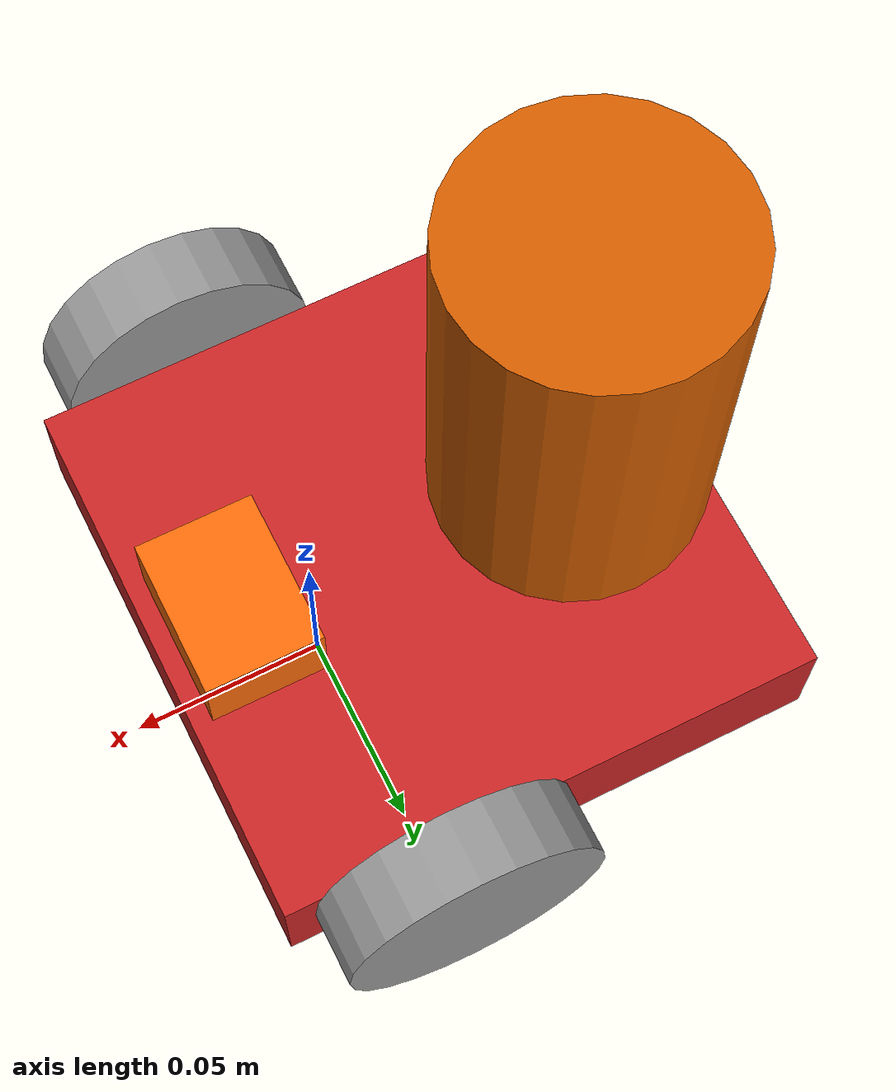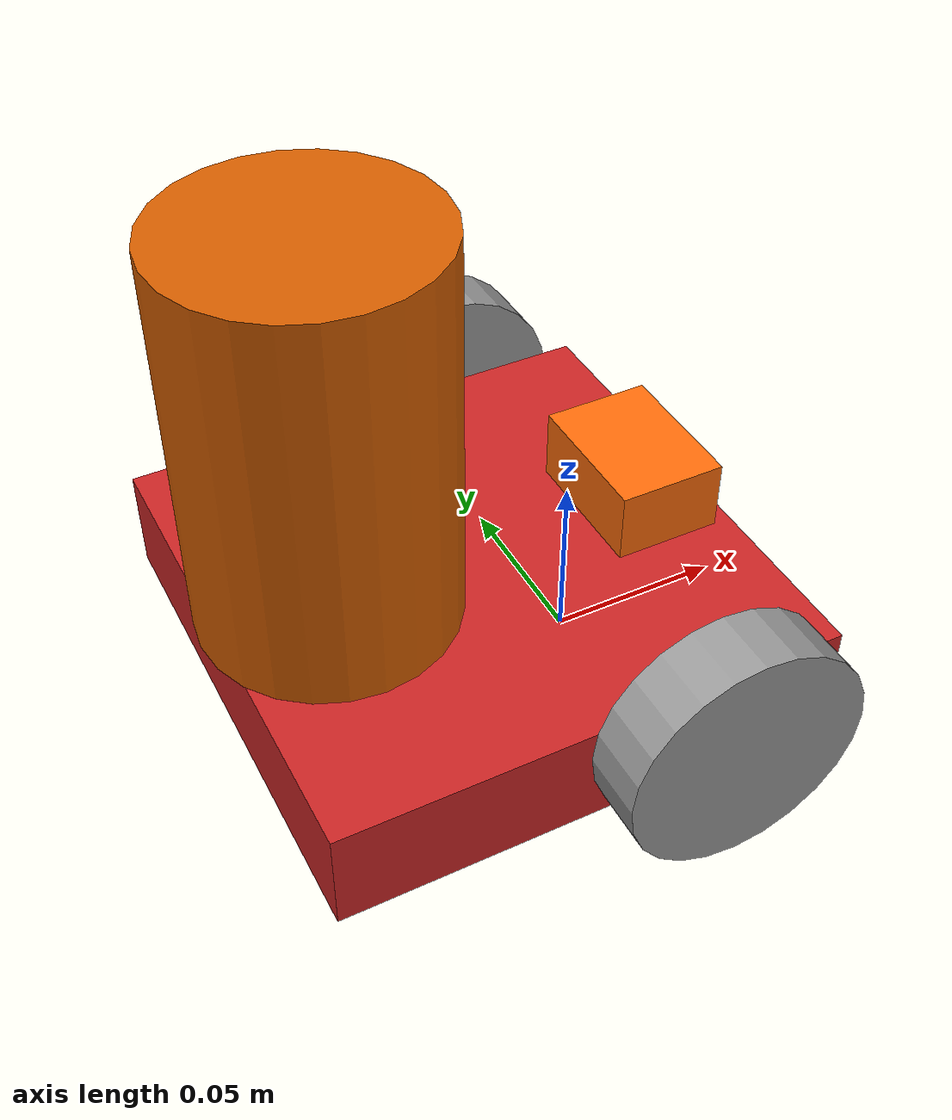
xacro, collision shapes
<?xml version="1.0"?>
<robot name="sensors_diff_robot" xmlns:xacro="http://ros.org/wiki/xacro">
  <xacro:include filename="$(find my_ugv_description)/urdf/sensors_diff_robot_gazebo.xacro"/>

  <!-- Robot Gazebo Plugins -->
  <xacro:my_robot_sensors />

  <link name="base_footprint"/>

  <joint name="base_joint" type="fixed">
    <parent link="base_footprint"/>
    <child link="base_link"/>
    <origin xyz="0 0 0.01" rpy="0 0 0"/>
  </joint>
  <link name="base_link">
    <visual>
      <origin xyz="-0.03 0 0.015" rpy="0 0 0"/>
      <geometry>
        <box size="0.14 0.14 0.03" />
      </geometry>
    </visual>
    <collision>
      <origin xyz="-0.03 0 0.015" rpy="0 0 0"/>
      <geometry>
        <box size="0.140 0.140 0.03"/>
      </geometry>
    </collision>
    <inertial>
      <origin xyz="0 0 0.015" rpy="0 0 0"/> <!-- Since a plugin is used, an offset along its X axis can affect the robot behaivior -->
      <mass value="8.25e-01"/>
      <inertia ixx="1.4e-03" ixy="0" ixz="0"
               iyy="1.4e-03" iyz="0"
               izz="2.695e-03" />
    </inertial>
  </link>

  <!-- Wheels definition (joints and links) -->
  <joint name="wheel_left_joint" type="continuous">
    <parent link="base_link"/>
    <child link="wheel_left_link"/>
    <origin xyz="0 0.08 0.023" rpy="-1.57 0 0"/>
    <axis xyz="0 0 1"/>
  </joint>
  <link name="wheel_left_link">
    <visual>
      <origin xyz="0 0 0" rpy="1.57 0 0"/>
      <geometry>
        <!--cylinder length="0.018" radius="0.033"/-->
        <mesh filename="package://my_ugv_description/meshes/husky_wheel.stl" scale="0.18 0.18 0.18"/>
      </geometry>
    </visual>
    <collision>
      <origin xyz="0 0 0" rpy="0 0 0"/>
      <geometry>
        <cylinder length="0.018" radius="0.033"/>
      </geometry>
    </collision>
    <inertial>
      <origin xyz="0 0 0" />
      <mass value="3e-02" />
      <inertia ixx="9e-06" ixy="0" ixz="0"
               iyy="9e-06" iyz="0"
               izz="1.6e-05" />
      </inertial>
  </link>

  <joint name="wheel_right_joint" type="continuous">
    <parent link="base_link"/>
    <child link="wheel_right_link"/>
    <origin xyz="0 -0.08 0.023" rpy="-1.57 0 0"/>
    <axis xyz="0 0 1"/>
  </joint>
  <link name="wheel_right_link">
    <visual>
      <origin xyz="0 0 0" rpy="1.57 0 0"/>
      <geometry>
        <!--cylinder length="0.018" radius="0.033"/-->
        <mesh filename="package://my_ugv_description/meshes/husky_wheel.stl" scale="0.18 0.18 0.18"/>
      </geometry>
    </visual>
    <collision>
      <origin xyz="0 0 0" rpy="0 0 0"/>
      <geometry>
        <cylinder length="0.018" radius="0.033"/>
      </geometry>
    </collision>
    <inertial>
      <origin xyz="0 0 0" />
      <mass value="3e-02" />
      <inertia ixx="9e-06" ixy="0" ixz="0"
               iyy="9e-06" iyz="0"
               izz="1.6e-05" />
      </inertial>
  </link>

  <!-- Caster wheel definition (joint and link) -->
  <joint name="caster_joint" type="fixed">
    <parent link="base_link"/>
    <child link="caster_link"/>
    <origin xyz="-0.08 0 0" rpy="0 0 0"/>
  </joint>
  <link name="caster_link">
    <visual>
      <origin xyz="0 0 0" rpy="0 0 0"/>
      <geometry>
        <sphere radius="0.01"/>
      </geometry>
    </visual>
    <collision>
      <origin xyz="0 0 0" rpy="0 0 0"/>
      <geometry>
        <sphere radius="0.01"/>
      </geometry>
    </collision>
    <!-- Since the caster wheel is only a point of contact, inertial tag can be ommited -->
  </link>

  <!-- SENSORS definition -->
  <!-- LIDAR -->
  <joint name="scan_joint" type="fixed"> <!-- The scan_joint must be high enough to avoid possible interferences -->
    <parent link="base_link"/>
    <child link="base_scan"/>
    <origin xyz="-0.07 0 ${0.03+0.06}" rpy="0 0 0"/>
  </joint>
  <link name="base_scan">
    <visual>
      <origin xyz="0 0 -0.015" rpy="0 0 0"/>
      <geometry>
        <mesh filename="package://my_ugv_description/meshes/hokuyo.dae" scale="1 1 1.3" />
        <!--cylinder radius="0.035" length="0.1" /-->
      </geometry>
    </visual>
    <collision>
      <origin xyz="0 0 -0.005" rpy="0 0 0"/>
      <geometry>
        <cylinder radius="0.035" length="0.11"/>
      </geometry>
    </collision>
    <!-- Since a sensor is used, the inertial tag can be ommited -->
  </link>

  <!-- The joint and link of the camera. Note: Both link name and joint name must be the same as the ones used in the plugin -->
  <joint name="camera_rgb_optical_joint" type="fixed">
    <origin xyz="0.03 0 0.04" rpy="0 0 0"/> <!-- X axis is considered as the optical axis -->
    <parent link="base_link"/>
    <child link="camera_rgb_frame"/>
  </joint>
  <link name="camera_rgb_frame">
    <visual>
      <origin xyz="-0.015 0 0" rpy="0 0 0"/>
      <geometry>
        <box size="0.01 0.04 0.02"/>
      </geometry>
      <material name="orange"/> <!--Color in RViz-->
    </visual>
    <visual>
      <origin xyz="-0.01 0 0" rpy="0 0 0"/>
      <geometry>
        <mesh filename="package://my_ugv_description/meshes/max_sonar_ez4.dae" scale="1 1 0.8" />
      </geometry>
      <material name="orange"/> <!--Color in RViz-->
    </visual>

    <collision>
      <origin xyz="-0.01 0 0" rpy="0 0 0"/>
      <geometry>
        <box size="0.03 0.04 0.02"/>
      </geometry>
    </collision>
    <!-- Since a sensor is used, the inertial tag can be ommited -->
  </link>

</robot>

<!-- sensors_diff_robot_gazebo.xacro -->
<robot name="sensors_diff_robot" xmlns:xacro="http://ros.org/wiki/xacro">
  <xacro:arg name="laser_visual" default="true"/> <!-- With true, blue rays are shown in Gazebo-->
  <xacro:arg name="camera_visual" default="false"/> <!-- With true, what the camera sees is shown en Gazebo-->

  <material name="orange"> <!-- Custom color (for RViz) -->
    <color rgba="${255/255} ${108/255} ${10/255} 1.0"/>
  </material>

  <gazebo reference="base_link">
    <material>Gazebo/Red</material> <!-- Color of the base link in Gazebo -->
  </gazebo>

  <gazebo reference="wheel_left_link"> <!-- Physical properties setup -->
    <mu1>0.1</mu1>
    <mu2>0.1</mu2>
    <kp>500000.0</kp>
    <kd>10.0</kd>
    <minDepth>0.001</minDepth>
    <maxVel>0.1</maxVel>
    <fdir1>1 0 0</fdir1>
    <material>Gazebo/Grey</material>
  </gazebo>

  <gazebo reference="wheel_right_link">
    <mu1>0.1</mu1>
    <mu2>0.1</mu2>
    <kp>500000.0</kp>
    <kd>10.0</kd>
    <minDepth>0.001</minDepth>
    <maxVel>0.1</maxVel>
    <fdir1>1 0 0</fdir1>
    <material>Gazebo/Grey</material>
  </gazebo>

  <gazebo reference="caster_link">
    <mu1>0.1</mu1>
    <mu2>0.1</mu2>
    <kp>1000000.0</kp>
    <kd>100.0</kd>
    <minDepth>0.001</minDepth>
    <maxVel>1.0</maxVel>
    <material>Gazebo/White</material>
  </gazebo>

  <gazebo>
    <plugin name="diff_controller" filename="libgazebo_ros_diff_drive.so"> <!-- Plugin for a differential mobile robot -->
      <commandTopic>cmd_vel</commandTopic>
      <odometryTopic>odom</odometryTopic>
      <odometryFrame>odom</odometryFrame>
      <odometrySource>world</odometrySource> <!-- world or encoder -->
      <publishOdomTF>true</publishOdomTF> <!-- Publish the fixed frame called odom, default = true-->
      <robotBaseFrame>base_footprint</robotBaseFrame>
      <publishWheelTF>true</publishWheelTF> <!-- default = false. To show the spining wheels attached to the robot. Thus, joint_state_publisher node must be omitted -->
      <publishTf>true</publishTf> <!-- default = true-->
      <publishWheelJointState>false</publishWheelJointState>
      <legacyMode>false</legacyMode>
      <updateRate>30</updateRate>
      <leftJoint>wheel_left_joint</leftJoint>
      <rightJoint>wheel_right_joint</rightJoint>
      <wheelSeparation>0.160</wheelSeparation>
      <wheelDiameter>0.066</wheelDiameter>
      <wheelAcceleration>1</wheelAcceleration>
      <wheelTorque>10</wheelTorque>
      <rosDebugLevel>na</rosDebugLevel>
    </plugin>
  </gazebo>

  <!-- Only the Hokuyo mesh is used. The used parameters are given by: https://emanual.robotis.com/docs/en/platform/turtlebot3/appendix_lds_01/ -->
 <!-- My robot Sensor Plugins -->
 <xacro:macro name="my_robot_sensors">
  <gazebo reference="base_scan">
    <sensor type="ray" name="hokuyo_LIDAR_sensor">
      <pose>0 0 0 0 0 0</pose>
      <visualize>$(arg laser_visual)</visualize>
      <update_rate>5</update_rate>
      <ray>
        <scan>
          <horizontal>
            <samples>360</samples>
            <resolution>1</resolution><!-- deg-->
            <min_angle>0.0</min_angle>
            <max_angle>6.28319</max_angle>
          </horizontal>
        </scan>
        <range>
          <min>0.120</min>
          <max>3.5</max>
          <resolution>0.015</resolution>
        </range>
        <noise>
          <type>gaussian</type>
          <mean>0.0</mean>
          <stddev>0.01</stddev>
        </noise>
      </ray>
      <plugin name="laser_scan_controller" filename="libgazebo_ros_laser.so"> <!-- Plugin for a LIDAR sensor -->
        <topicName>scan</topicName>
        <frameName>base_scan</frameName>
      </plugin>
    </sensor>
  </gazebo>

  <!-- A Raspberry Pi Camera v2.1 is simulated. Link : https://www.raspberrypi.org/documentation/hardware/camera/-->
  <gazebo reference="camera_rgb_frame">
    <sensor type="camera" name="Pi_camera">
      <always_on>true</always_on>
      <visualize>$(arg camera_visual)</visualize>
      <camera>
          <horizontal_fov>1.085595</horizontal_fov><!--rad-->
          <image>
              <width>640</width>
              <height>480</height>
              <format>R8G8B8</format>
          </image>
          <clip>
              <near>0.03</near>
              <far>100</far>
          </clip>
      </camera>
      <plugin name="camera_controller" filename="libgazebo_ros_camera.so"> <!-- Plugin for a monocular camera -->
        <alwaysOn>true</alwaysOn>
        <updateRate>30.0</updateRate>
        <cameraName>camera</cameraName>
        <frameName>camera_rgb_optical_joint</frameName>
        <imageTopicName>rgb/image_raw</imageTopicName>
        <cameraInfoTopicName>rgb/camera_info</cameraInfoTopicName>
        <hackBaseline>0.07</hackBaseline>
        <distortionK1>0.0</distortionK1>
        <distortionK2>0.0</distortionK2>
        <distortionK3>0.0</distortionK3>
        <distortionT1>0.0</distortionT1>
        <distortionT2>0.0</distortionT2>
      </plugin>
    </sensor>
  </gazebo>
 </xacro:macro>

</robot>
